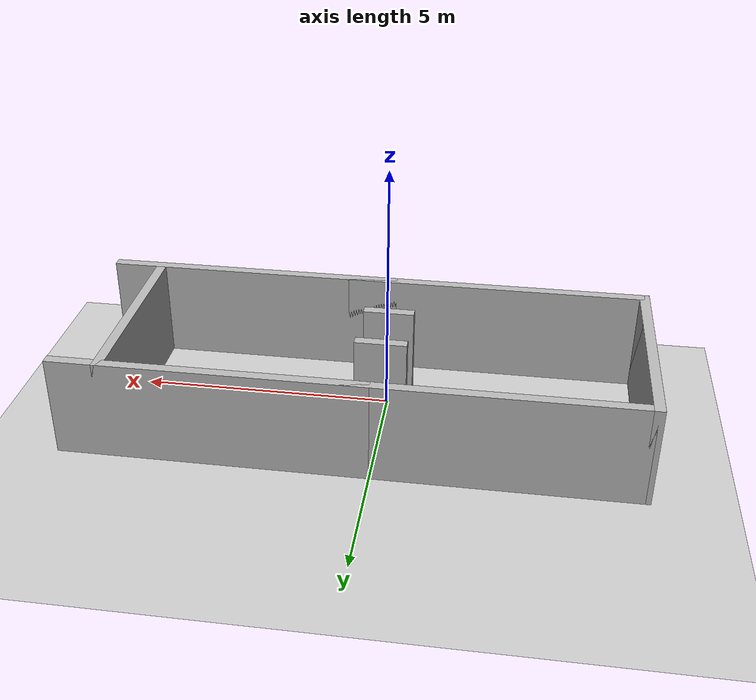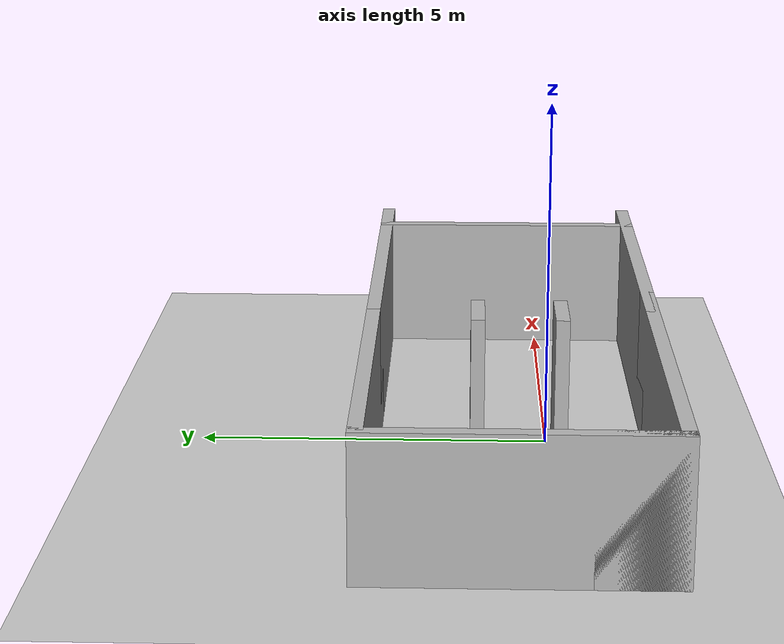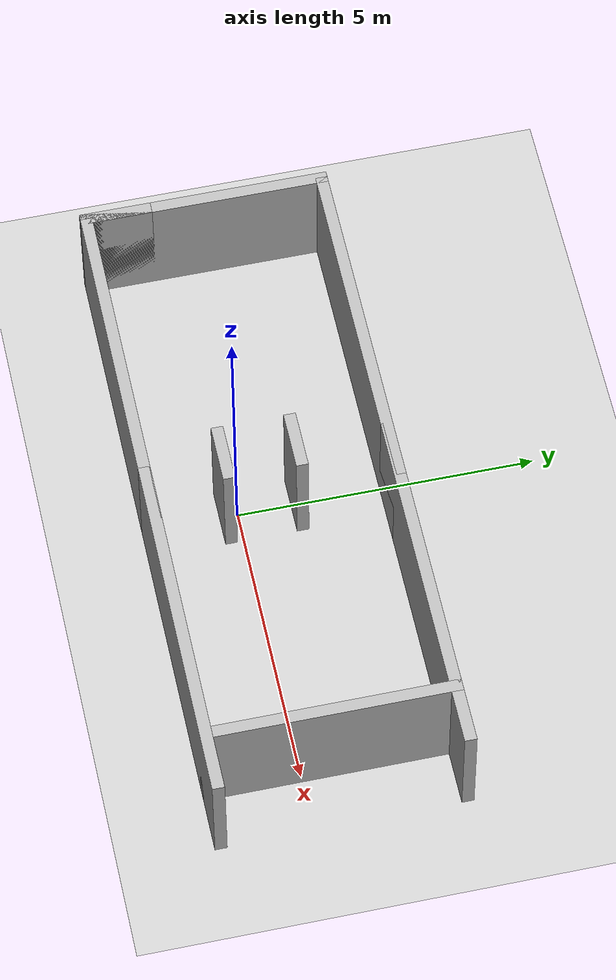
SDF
<?xml version="1.0"?>
<sdf version="1.6">
  <world name="corridor_world">
    <include>
      <uri>model://sun</uri>
    </include>
    <include>
      <uri>model://ground_plane</uri>
    </include>

    <light name="global_light" type="directional">
      <cast_shadows>false</cast_shadows>
      <pose>0 0 10 0 -0 0</pose>
      <diffuse>0.8 0.8 0.8 1</diffuse>
      <specular>0.2 0.2 0.2 1</specular>
      <attenuation>
        <range>100</range>
        <constant>0.9</constant>
        <linear>0.01</linear>
        <quadratic>0.001</quadratic>
      </attenuation>
      <direction>0 0 -1</direction>
    </light>

    <physics type="ode">
      <max_step_size>0.001</max_step_size>
      <real_time_factor>1</real_time_factor>
      <real_time_update_rate>1000</real_time_update_rate>
    </physics>

    <gui fullscreen="0">
      <camera name="user_camera">
        <pose>0 -8 8 0 0.7 0</pose>
        <view_controller>orbit</view_controller>
      </camera>
    </gui>

    <!-- ======== Corridor Walls ======== -->
    <!-- Wall template: 0.2m thick, 2.0m tall, varying lengths. All at z=1.0 center. -->

    <!-- North wall: long corridor boundary, y=2.5 -->
    <model name="wall_north_1">
      <static>true</static>
      <pose>-2 2.5 1 0 0 0</pose>
      <link name="link">
        <collision name="collision">
          <geometry><box><size>6 0.2 2.0</size></box></geometry>
        </collision>
        <visual name="visual">
          <geometry><box><size>6 0.2 2.0</size></box></geometry>
          <material><script>Gazebo/Grey</script></material>
        </visual>
      </link>
    </model>

    <model name="wall_north_2">
      <static>true</static>
      <pose>3 2.5 1 0 0 0</pose>
      <link name="link">
        <collision name="collision">
          <geometry><box><size>6 0.2 2.0</size></box></geometry>
        </collision>
        <visual name="visual">
          <geometry><box><size>6 0.2 2.0</size></box></geometry>
          <material><script>Gazebo/Grey</script></material>
        </visual>
      </link>
    </model>

    <!-- South wall: long corridor boundary, y=-1.5 -->
    <model name="wall_south_1">
      <static>true</static>
      <pose>-2 -1.5 1 0 0 0</pose>
      <link name="link">
        <collision name="collision">
          <geometry><box><size>6 0.2 2.0</size></box></geometry>
        </collision>
        <visual name="visual">
          <geometry><box><size>6 0.2 2.0</size></box></geometry>
          <material><script>Gazebo/Grey</script></material>
        </visual>
      </link>
    </model>

    <model name="wall_south_2">
      <static>true</static>
      <pose>3 -1.5 1 0 0 0</pose>
      <link name="link">
        <collision name="collision">
          <geometry><box><size>6 0.2 2.0</size></box></geometry>
        </collision>
        <visual name="visual">
          <geometry><box><size>6 0.2 2.0</size></box></geometry>
          <material><script>Gazebo/Grey</script></material>
        </visual>
      </link>
    </model>

    <!-- Cross wall: splits corridor into segments, y from -1.5 to 2.5 -->
    <model name="wall_cross_1">
      <static>true</static>
      <pose>-5 0.5 1 0 0 0</pose>
      <link name="link">
        <collision name="collision">
          <geometry><box><size>0.2 4.2 2.0</size></box></geometry>
        </collision>
        <visual name="visual">
          <geometry><box><size>0.2 4.2 2.0</size></box></geometry>
          <material><script>Gazebo/Grey</script></material>
        </visual>
      </link>
    </model>

    <!-- Doorway in cross wall (gap at y=0 to 1.5, 1.5m opening) -->
    <!-- Cross wall segment south of doorway -->
    <model name="wall_cross_1s">
      <static>true</static>
      <pose>-5 -1.0 1 0 0 0</pose>
      <link name="link">
        <collision name="collision">
          <geometry><box><size>0.2 1.2 2.0</size></box></geometry>
        </collision>
        <visual name="visual">
          <geometry><box><size>0.2 1.2 2.0</size></box></geometry>
          <material><script>Gazebo/Grey</script></material>
        </visual>
      </link>
    </model>

    <!-- Cross wall at x=5 -->
    <model name="wall_cross_2">
      <static>true</static>
      <pose>5 0.5 1 0 0 0</pose>
      <link name="link">
        <collision name="collision">
          <geometry><box><size>0.2 4.2 2.0</size></box></geometry>
        </collision>
        <visual name="visual">
          <geometry><box><size>0.2 4.2 2.0</size></box></geometry>
          <material><script>Gazebo/Grey</script></material>
        </visual>
      </link>
    </model>

    <!-- Narrow passage: two walls creating a 1.2m gap at x=0 -->
    <model name="wall_narrow_n">
      <static>true</static>
      <pose>0 1.0 1 0 0 0</pose>
      <link name="link">
        <collision name="collision">
          <geometry><box><size>1.0 0.2 2.0</size></box></geometry>
        </collision>
        <visual name="visual">
          <geometry><box><size>1.0 0.2 2.0</size></box></geometry>
          <material><script>Gazebo/RedBrick</script></material>
        </visual>
      </link>
    </model>
    <model name="wall_narrow_s">
      <static>true</static>
      <pose>0 -0.2 1 0 0 0</pose>
      <link name="link">
        <collision name="collision">
          <geometry><box><size>1.0 0.2 2.0</size></box></geometry>
        </collision>
        <visual name="visual">
          <geometry><box><size>1.0 0.2 2.0</size></box></geometry>
          <material><script>Gazebo/RedBrick</script></material>
        </visual>
      </link>
    </model>

  </world>
</sdf>
